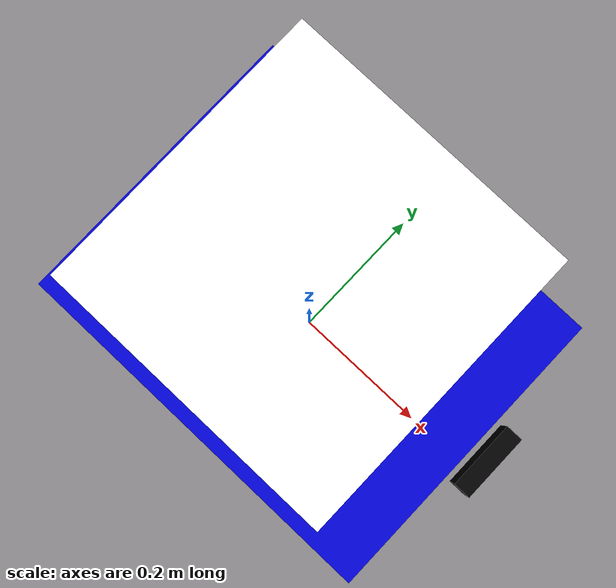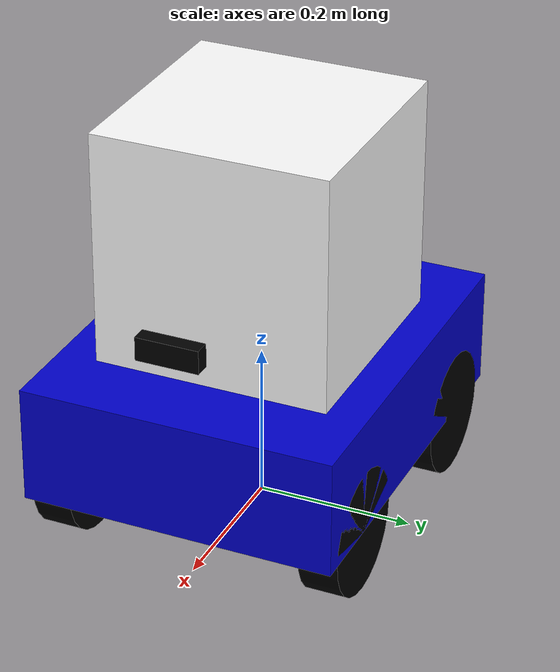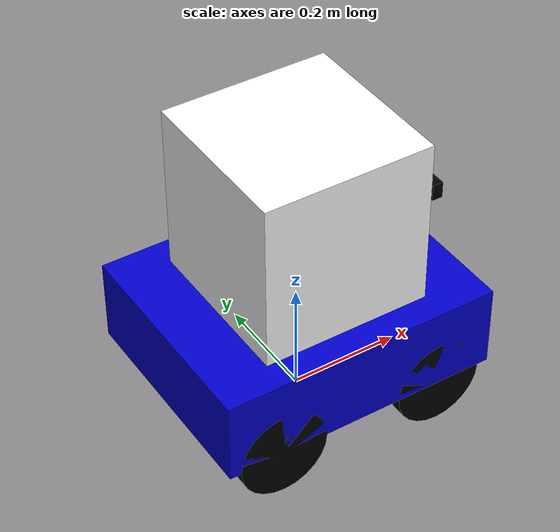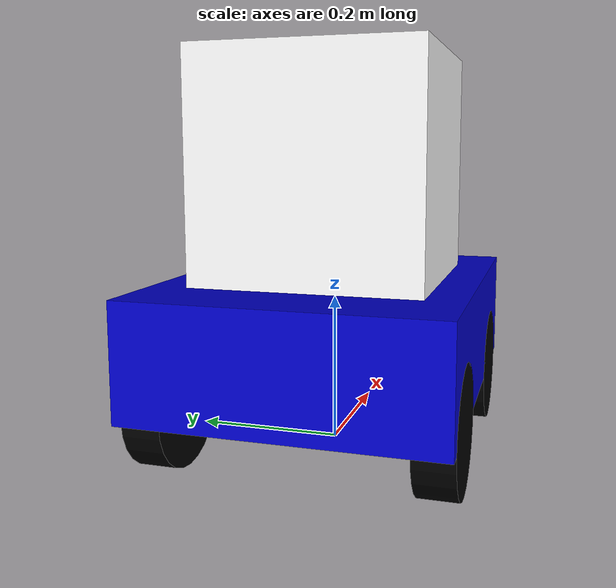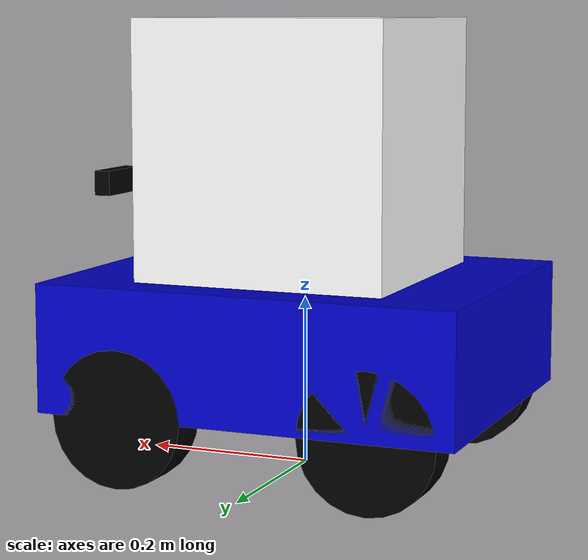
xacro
<?xml version="1.0"?>
<robot xmlns:xacro="http://www.ros.org/wiki/xacro" name="hospital_robot">

  <!-- Define constants -->
  <xacro:property name="base_width" value="0.4"/>
  <xacro:property name="base_length" value="0.5"/>
  <xacro:property name="base_height" value="0.15"/>
  <xacro:property name="wheel_radius" value="0.08"/>
  <xacro:property name="wheel_width" value="0.05"/>
  <xacro:property name="wheel_separation" value="0.35"/>
  <xacro:property name="wheel_base" value="0.3"/>

  <!-- Materials -->
  <material name="white">
    <color rgba="1 1 1 1"/>
  </material>

  <material name="blue">
    <color rgba="0 0 0.8 1"/>
  </material>

  <material name="black">
    <color rgba="0 0 0 1"/>
  </material>

  <material name="red">
    <color rgba="0.8 0 0 1"/>
  </material>

  <!-- Base Link -->
  <link name="base_footprint"/>

  <!-- Base Link (chassis) -->
  <link name="base_link">
    <visual>
      <origin xyz="0 0 ${base_height/2}" rpy="0 0 0"/>
      <geometry>
        <box size="${base_length} ${base_width} ${base_height}"/>
      </geometry>
      <material name="blue"/>
    </visual>

    <collision>
      <origin xyz="0 0 ${base_height/2}" rpy="0 0 0"/>
      <geometry>
        <box size="${base_length} ${base_width} ${base_height}"/>
      </geometry>
    </collision>

    <inertial>
      <origin xyz="0 0 ${base_height/2}" rpy="0 0 0"/>
      <mass value="10.0"/>
      <inertia ixx="0.1" ixy="0.0" ixz="0.0"
               iyy="0.1" iyz="0.0"
               izz="0.1"/>
    </inertial>
  </link>

  <joint name="base_joint" type="fixed">
    <parent link="base_footprint"/>
    <child link="base_link"/>
    <origin xyz="0 0 ${wheel_radius}" rpy="0 0 0"/>
  </joint>

  <!-- Macro for wheels -->
  <xacro:macro name="wheel" params="prefix reflect_lr reflect_fb">
    <link name="${prefix}_wheel">
      <visual>
        <origin xyz="0 0 0" rpy="${pi/2} 0 0"/>
        <geometry>
          <cylinder radius="${wheel_radius}" length="${wheel_width}"/>
        </geometry>
        <material name="black"/>
      </visual>

      <collision>
        <origin xyz="0 0 0" rpy="${pi/2} 0 0"/>
        <geometry>
          <cylinder radius="${wheel_radius}" length="${wheel_width}"/>
        </geometry>
      </collision>

      <inertial>
        <origin xyz="0 0 0" rpy="${pi/2} 0 0"/>
        <mass value="1.0"/>
        <inertia ixx="0.001" ixy="0.0" ixz="0.0"
                 iyy="0.001" iyz="0.0"
                 izz="0.001"/>
      </inertial>
    </link>

    <joint name="${prefix}_wheel_joint" type="continuous">
      <parent link="base_link"/>
      <child link="${prefix}_wheel"/>
      <origin xyz="${reflect_fb*wheel_base/2} ${reflect_lr*wheel_separation/2} 0" rpy="0 0 0"/>
      <axis xyz="0 1 0"/>
    </joint>
  </xacro:macro>

  <!-- Create all four wheels -->
  <xacro:wheel prefix="front_left" reflect_lr="1" reflect_fb="1"/>
  <xacro:wheel prefix="front_right" reflect_lr="-1" reflect_fb="1"/>
  <xacro:wheel prefix="rear_left" reflect_lr="1" reflect_fb="-1"/>
  <xacro:wheel prefix="rear_right" reflect_lr="-1" reflect_fb="-1"/>

  <!-- Delivery Box on Top -->
  <link name="delivery_box">
    <visual>
      <origin xyz="0 0 0.15" rpy="0 0 0"/>
      <geometry>
        <box size="0.3 0.3 0.3"/>
      </geometry>
      <material name="white"/>
    </visual>

    <collision>
      <origin xyz="0 0 0.15" rpy="0 0 0"/>
      <geometry>
        <box size="0.3 0.3 0.3"/>
      </geometry>
    </collision>

    <inertial>
      <origin xyz="0 0 0.15" rpy="0 0 0"/>
      <mass value="2.0"/>
      <inertia ixx="0.02" ixy="0.0" ixz="0.0"
               iyy="0.02" iyz="0.0"
               izz="0.02"/>
    </inertial>
  </link>

  <joint name="delivery_box_joint" type="fixed">
    <parent link="base_link"/>
    <child link="delivery_box"/>
    <origin xyz="0 0 ${base_height}" rpy="0 0 0"/>
  </joint>

  <!-- LiDAR Sensor -->
  <link name="laser_link">
    <visual>
      <origin xyz="0 0 0" rpy="0 0 0"/>
      <geometry>
        <cylinder radius="0.05" length="0.04"/>
      </geometry>
      <material name="red"/>
    </visual>

    <collision>
      <origin xyz="0 0 0" rpy="0 0 0"/>
      <geometry>
        <cylinder radius="0.05" length="0.04"/>
      </geometry>
    </collision>

    <inertial>
      <origin xyz="0 0 0" rpy="0 0 0"/>
      <mass value="0.125"/>
      <inertia ixx="0.001" ixy="0.0" ixz="0.0"
               iyy="0.001" iyz="0.0"
               izz="0.001"/>
    </inertial>
  </link>

  <joint name="laser_joint" type="fixed">
    <parent link="base_link"/>
    <child link="laser_link"/>
    <origin xyz="0 0 ${base_height + 0.02}" rpy="0 0 0"/>
  </joint>

  <!-- Camera (optional for future) -->
  <link name="camera_link">
    <visual>
      <origin xyz="0 0 0" rpy="0 0 0"/>
      <geometry>
        <box size="0.02 0.08 0.03"/>
      </geometry>
      <material name="black"/>
    </visual>
  </link>

  <joint name="camera_joint" type="fixed">
    <parent link="base_link"/>
    <child link="camera_link"/>
    <origin xyz="${base_length/2} 0 ${base_height + 0.1}" rpy="0 0 0"/>
  </joint>

  <!-- ============ GAZEBO PLUGINS ============ -->

  <!-- Differential Drive Controller -->
  <gazebo>
    <plugin name="differential_drive_controller" filename="libgazebo_ros_diff_drive.so">

      <!-- Update rate in Hz -->
      <update_rate>50</update_rate>

      <!-- Wheels -->
      <left_joint>front_left_wheel_joint</left_joint>
      <right_joint>front_right_wheel_joint</right_joint>

      <!-- Kinematics -->
      <wheel_separation>${wheel_separation}</wheel_separation>
      <wheel_diameter>${2*wheel_radius}</wheel_diameter>

      <!-- Limits -->
      <max_wheel_torque>20</max_wheel_torque>
      <max_wheel_acceleration>1.0</max_wheel_acceleration>

      <!-- Output -->
      <publish_odom>true</publish_odom>
      <publish_odom_tf>true</publish_odom_tf>
      <publish_wheel_tf>true</publish_wheel_tf>

      <odometry_frame>odom</odometry_frame>
      <robot_base_frame>base_footprint</robot_base_frame>

      <!-- Topics -->
      <command_topic>cmd_vel</command_topic>
      <odometry_topic>odom</odometry_topic>

    </plugin>
  </gazebo>

  <!-- LiDAR Sensor Plugin -->
  <gazebo reference="laser_link">
    <sensor name="laser_sensor" type="ray">
      <pose>0 0 0 0 0 0</pose>
      <visualize>true</visualize>
      <update_rate>10</update_rate>
      <ray>
        <scan>
          <horizontal>
            <samples>360</samples>
            <resolution>1</resolution>
            <min_angle>-3.14159</min_angle>
            <max_angle>3.14159</max_angle>
          </horizontal>
        </scan>
        <range>
          <min>0.12</min>
          <max>10.0</max>
          <resolution>0.01</resolution>
        </range>
        <noise>
          <type>gaussian</type>
          <mean>0.0</mean>
          <stddev>0.01</stddev>
        </noise>
      </ray>
      <plugin name="laser_controller" filename="libgazebo_ros_ray_sensor.so">
        <ros>
          <remapping>~/out:=scan</remapping>
        </ros>
        <output_type>sensor_msgs/LaserScan</output_type>
        <frame_name>laser_link</frame_name>
      </plugin>
    </sensor>
  </gazebo>

  <!-- Add colors to Gazebo -->
  <gazebo reference="base_link">
    <material>Gazebo/Blue</material>
  </gazebo>

  <gazebo reference="delivery_box">
    <material>Gazebo/White</material>
  </gazebo>

  <gazebo reference="laser_link">
    <material>Gazebo/Red</material>
  </gazebo>

  <gazebo reference="front_left_wheel">
    <material>Gazebo/Black</material>
  </gazebo>

  <gazebo reference="front_right_wheel">
    <material>Gazebo/Black</material>
  </gazebo>

  <gazebo reference="rear_left_wheel">
    <material>Gazebo/Black</material>
  </gazebo>

  <gazebo reference="rear_right_wheel">
    <material>Gazebo/Black</material>
  </gazebo>

</robot>
